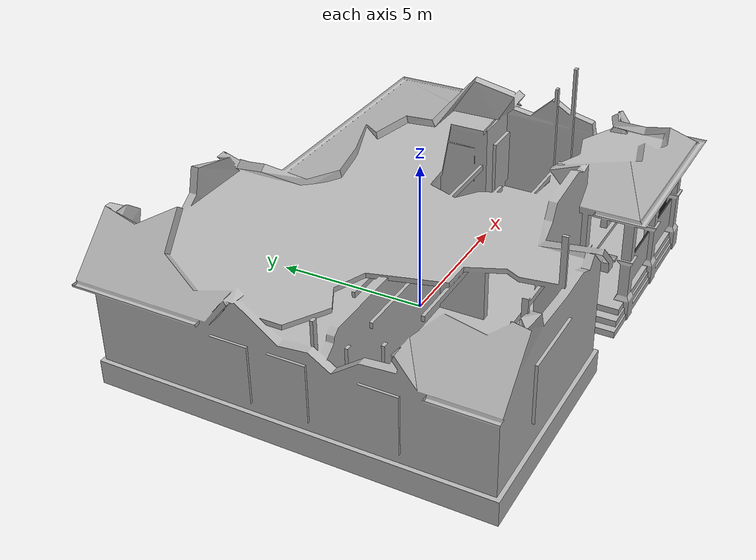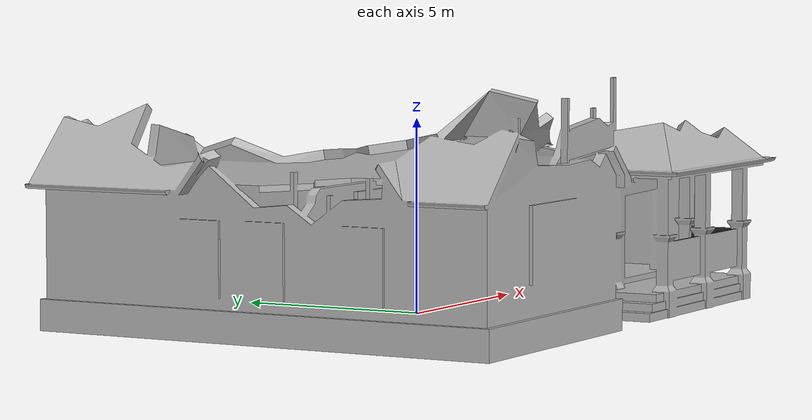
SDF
<?xml version='1.0'?>
<sdf version='1.6'>
  <model name='collapsed_house2'>
    <link name='link'>
      <self_collide>0</self_collide>
      <enable_wind>0</enable_wind>
      <kinematic>0</kinematic>
      <pose frame=''>0 0 0 0 -0 0</pose>
      <visual name='visual'>
        <geometry>
          <mesh>
            <scale>1.5 1.5 1.5</scale>
            <uri>model://collapsed_house/meshes/collapsed_house.dae</uri>
          </mesh>
        </geometry>
        <pose frame=''>0 0 0 0 -0 0</pose>
        <transparency>0</transparency>
        <cast_shadows>1</cast_shadows>
      </visual>
      <collision name='collision'>
        <laser_retro>0</laser_retro>
        <max_contacts>10</max_contacts>
        <pose frame=''>0 0 0 0 -0 0</pose>
        <geometry>
          <mesh>
            <uri>/home/marceloSimon/usar_multirobot/src/usar_gazebo/models/collapsed_house/meshes/collapsed_house.dae</uri>
            <scale>1.5 1.5 1.5</scale>
          </mesh>
        </geometry>
        <surface>
          <friction>
            <ode>
              <mu>1</mu>
              <mu2>1</mu2>
              <fdir1>0 0 0</fdir1>
              <slip1>0</slip1>
              <slip2>0</slip2>
            </ode>
            <torsional>
              <coefficient>1</coefficient>
              <patch_radius>0</patch_radius>
              <surface_radius>0</surface_radius>
              <use_patch_radius>1</use_patch_radius>
              <ode>
                <slip>0</slip>
              </ode>
            </torsional>
          </friction>
          <bounce>
            <restitution_coefficient>0</restitution_coefficient>
            <threshold>1e+06</threshold>
          </bounce>
          <contact>
            <collide_without_contact>0</collide_without_contact>
            <collide_without_contact_bitmask>1</collide_without_contact_bitmask>
            <collide_bitmask>1</collide_bitmask>
            <ode>
              <soft_cfm>0</soft_cfm>
              <soft_erp>0.2</soft_erp>
              <kp>1e+13</kp>
              <kd>1</kd>
              <max_vel>0.01</max_vel>
              <min_depth>0</min_depth>
            </ode>
            <bullet>
              <split_impulse>1</split_impulse>
              <split_impulse_penetration_threshold>-0.01</split_impulse_penetration_threshold>
              <soft_cfm>0</soft_cfm>
              <soft_erp>0.2</soft_erp>
              <kp>1e+13</kp>
              <kd>1</kd>
            </bullet>
          </contact>
        </surface>
      </collision>
    </link>
    <link name='link_0'>
      <inertial>
        <mass>0.0586522</mass>
        <inertia>
          <ixx>0.00308143</ixx>
          <ixy>0</ixy>
          <ixz>0</ixz>
          <iyy>0.012942</iyy>
          <iyz>0</iyz>
          <izz>0.00988712</izz>
        </inertia>
        <pose frame=''>0 0 0 0 -0 0</pose>
      </inertial>
      <pose frame=''>7.16592 -5.06526 1.47989 0 -0 1.57</pose>
      <self_collide>0</self_collide>
      <enable_wind>0</enable_wind>
      <kinematic>0</kinematic>
      <gravity>1</gravity>
      <visual name='visual'>
        <pose frame=''>0 0 0 0 -0 0</pose>
        <geometry>
          <box>
            <size>1.42132 0.052076 0.792297</size>
          </box>
        </geometry>
        <material>
          <lighting>1</lighting>
          <script>
            <uri>file://media/materials/scripts/gazebo.material</uri>
            <name>Gazebo/Black</name>
          </script>
          <shader type='vertex'>
            <normal_map>__default__</normal_map>
          </shader>
          <ambient>0.3 0.3 0.3 1</ambient>
          <diffuse>0.7 0.7 0.7 1</diffuse>
          <specular>0.01 0.01 0.01 1</specular>
          <emissive>0 0 0 1</emissive>
        </material>
        <transparency>0</transparency>
        <cast_shadows>1</cast_shadows>
      </visual>
      <collision name='collision'>
        <laser_retro>0</laser_retro>
        <max_contacts>10</max_contacts>
        <pose frame=''>0 0 0 0 -0 0</pose>
        <geometry>
          <box>
            <size>1.42132 0.052076 0.792297</size>
          </box>
        </geometry>
        <surface>
          <friction>
            <ode>
              <mu>1</mu>
              <mu2>1</mu2>
              <fdir1>0 0 0</fdir1>
              <slip1>0</slip1>
              <slip2>0</slip2>
            </ode>
            <torsional>
              <coefficient>1</coefficient>
              <patch_radius>0</patch_radius>
              <surface_radius>0</surface_radius>
              <use_patch_radius>1</use_patch_radius>
              <ode>
                <slip>0</slip>
              </ode>
            </torsional>
          </friction>
          <bounce>
            <restitution_coefficient>0</restitution_coefficient>
            <threshold>1e+06</threshold>
          </bounce>
          <contact>
            <collide_without_contact>0</collide_without_contact>
            <collide_without_contact_bitmask>1</collide_without_contact_bitmask>
            <collide_bitmask>1</collide_bitmask>
            <ode>
              <soft_cfm>0</soft_cfm>
              <soft_erp>0.2</soft_erp>
              <kp>1e+13</kp>
              <kd>1</kd>
              <max_vel>0.01</max_vel>
              <min_depth>0</min_depth>
            </ode>
            <bullet>
              <split_impulse>1</split_impulse>
              <split_impulse_penetration_threshold>-0.01</split_impulse_penetration_threshold>
              <soft_cfm>0</soft_cfm>
              <soft_erp>0.2</soft_erp>
              <kp>1e+13</kp>
              <kd>1</kd>
            </bullet>
          </contact>
        </surface>
      </collision>
    </link>
    <link name='link_0_clone'>
      <inertial>
        <mass>0.211219</mass>
        <inertia>
          <ixx>0.0141636</ixx>
          <ixy>0</ixy>
          <ixz>0</ixz>
          <iyy>0.375073</iyy>
          <iyz>0</iyz>
          <izz>0.361005</izz>
        </inertia>
        <pose frame=''>0 0 0 0 -0 0</pose>
      </inertial>
      <pose frame=''>4.86715 -5.76812 1.42599 0 -0 3.14</pose>
      <self_collide>0</self_collide>
      <enable_wind>0</enable_wind>
      <kinematic>0</kinematic>
      <gravity>1</gravity>
      <visual name='visual'>
        <pose frame=''>0 0 0 0 -0 0</pose>
        <geometry>
          <box>
            <size>4.52848 0.052076 0.895526</size>
          </box>
        </geometry>
        <material>
          <lighting>1</lighting>
          <script>
            <uri>file://media/materials/scripts/gazebo.material</uri>
            <name>Gazebo/Black</name>
          </script>
          <shader type='pixel'>
            <normal_map>__default__</normal_map>
          </shader>
          <ambient>0 0 0 1</ambient>
          <diffuse>0 0 0 1</diffuse>
          <specular>0.1 0.1 0.1 1</specular>
          <emissive>0 0 0 1</emissive>
        </material>
        <transparency>0</transparency>
        <cast_shadows>1</cast_shadows>
      </visual>
      <collision name='collision'>
        <laser_retro>0</laser_retro>
        <max_contacts>10</max_contacts>
        <pose frame=''>0 0 0 0 -0 0</pose>
        <geometry>
          <box>
            <size>4.52848 0.052076 0.895526</size>
          </box>
        </geometry>
        <surface>
          <friction>
            <ode>
              <mu>1</mu>
              <mu2>1</mu2>
              <fdir1>0 0 0</fdir1>
              <slip1>0</slip1>
              <slip2>0</slip2>
            </ode>
            <torsional>
              <coefficient>1</coefficient>
              <patch_radius>0</patch_radius>
              <surface_radius>0</surface_radius>
              <use_patch_radius>1</use_patch_radius>
              <ode>
                <slip>0</slip>
              </ode>
            </torsional>
          </friction>
          <bounce>
            <restitution_coefficient>0</restitution_coefficient>
            <threshold>1e+06</threshold>
          </bounce>
          <contact>
            <collide_without_contact>0</collide_without_contact>
            <collide_without_contact_bitmask>1</collide_without_contact_bitmask>
            <collide_bitmask>1</collide_bitmask>
            <ode>
              <soft_cfm>0</soft_cfm>
              <soft_erp>0.2</soft_erp>
              <kp>1e+13</kp>
              <kd>1</kd>
              <max_vel>0.01</max_vel>
              <min_depth>0</min_depth>
            </ode>
            <bullet>
              <split_impulse>1</split_impulse>
              <split_impulse_penetration_threshold>-0.01</split_impulse_penetration_threshold>
              <soft_cfm>0</soft_cfm>
              <soft_erp>0.2</soft_erp>
              <kp>1e+13</kp>
              <kd>1</kd>
            </bullet>
          </contact>
        </surface>
      </collision>
    </link>
    <link name='link_0_clone_0'>
      <inertial>
        <mass>0.0897248</mass>
        <inertia>
          <ixx>0.00496172</ixx>
          <ixy>0</ixy>
          <ixz>0</ixz>
          <iyy>0.0385165</iyy>
          <iyz>0</iyz>
          <izz>0.0335953</izz>
        </inertia>
        <pose frame=''>0 0 0 0 -0 0</pose>
      </inertial>
      <pose frame=''>5.97433 4.32289 1.47091 0 -0 3.14</pose>
      <self_collide>0</self_collide>
      <enable_wind>0</enable_wind>
      <kinematic>0</kinematic>
      <gravity>1</gravity>
      <visual name='visual'>
        <pose frame=''>0 0 0 0 -0 0</pose>
        <geometry>
          <box>
            <size>2.11906 0.052076 0.812945</size>
          </box>
        </geometry>
        <material>
          <lighting>1</lighting>
          <script>
            <uri>file://media/materials/scripts/gazebo.material</uri>
            <name>Gazebo/Black</name>
          </script>
          <shader type='pixel'>
            <normal_map>__default__</normal_map>
          </shader>
          <ambient>0.3 0.3 0.3 1</ambient>
          <diffuse>0.7 0.7 0.7 1</diffuse>
          <specular>0.01 0.01 0.01 1</specular>
          <emissive>0 0 0 1</emissive>
        </material>
        <transparency>0</transparency>
        <cast_shadows>1</cast_shadows>
      </visual>
      <collision name='collision'>
        <laser_retro>0</laser_retro>
        <max_contacts>10</max_contacts>
        <pose frame=''>0 0 0 0 -0 0</pose>
        <geometry>
          <box>
            <size>2.11906 0.052076 0.812945</size>
          </box>
        </geometry>
        <surface>
          <friction>
            <ode>
              <mu>1</mu>
              <mu2>1</mu2>
              <fdir1>0 0 0</fdir1>
              <slip1>0</slip1>
              <slip2>0</slip2>
            </ode>
            <torsional>
              <coefficient>1</coefficient>
              <patch_radius>0</patch_radius>
              <surface_radius>0</surface_radius>
              <use_patch_radius>1</use_patch_radius>
              <ode>
                <slip>0</slip>
              </ode>
            </torsional>
          </friction>
          <bounce>
            <restitution_coefficient>0</restitution_coefficient>
            <threshold>1e+06</threshold>
          </bounce>
          <contact>
            <collide_without_contact>0</collide_without_contact>
            <collide_without_contact_bitmask>1</collide_without_contact_bitmask>
            <collide_bitmask>1</collide_bitmask>
            <ode>
              <soft_cfm>0</soft_cfm>
              <soft_erp>0.2</soft_erp>
              <kp>1e+13</kp>
              <kd>1</kd>
              <max_vel>0.01</max_vel>
              <min_depth>0</min_depth>
            </ode>
            <bullet>
              <split_impulse>1</split_impulse>
              <split_impulse_penetration_threshold>-0.01</split_impulse_penetration_threshold>
              <soft_cfm>0</soft_cfm>
              <soft_erp>0.2</soft_erp>
              <kp>1e+13</kp>
              <kd>1</kd>
            </bullet>
          </contact>
        </surface>
      </collision>
    </link>
    <link name='link_0_clone_0_clone'>
      <inertial>
        <mass>0.0897248</mass>
        <inertia>
          <ixx>0.00496172</ixx>
          <ixy>0</ixy>
          <ixz>0</ixz>
          <iyy>0.0385165</iyy>
          <iyz>0</iyz>
          <izz>0.0335953</izz>
        </inertia>
        <pose frame=''>0 0 0 0 -0 0</pose>
      </inertial>
      <pose frame=''>7.16719 3.30743 1.47091 0 0 -1.57319</pose>
      <self_collide>0</self_collide>
      <enable_wind>0</enable_wind>
      <kinematic>0</kinematic>
      <gravity>1</gravity>
      <visual name='visual'>
        <pose frame=''>0 0 0 0 -0 0</pose>
        <geometry>
          <box>
            <size>2.11906 0.052076 0.812945</size>
          </box>
        </geometry>
        <material>
          <lighting>1</lighting>
          <script>
            <uri>file://media/materials/scripts/gazebo.material</uri>
            <name>Gazebo/Black</name>
          </script>
          <shader type='pixel'>
            <normal_map>__default__</normal_map>
          </shader>
          <ambient>0 0 0 1</ambient>
          <diffuse>0 0 0 1</diffuse>
          <specular>0.1 0.1 0.1 1</specular>
          <emissive>0 0 0 1</emissive>
        </material>
        <transparency>0</transparency>
        <cast_shadows>1</cast_shadows>
      </visual>
      <collision name='collision'>
        <laser_retro>0</laser_retro>
        <max_contacts>10</max_contacts>
        <pose frame=''>0 0 0 0 -0 0</pose>
        <geometry>
          <box>
            <size>2.11906 0.052076 0.812945</size>
          </box>
        </geometry>
        <surface>
          <friction>
            <ode>
              <mu>1</mu>
              <mu2>1</mu2>
              <fdir1>0 0 0</fdir1>
              <slip1>0</slip1>
              <slip2>0</slip2>
            </ode>
            <torsional>
              <coefficient>1</coefficient>
              <patch_radius>0</patch_radius>
              <surface_radius>0</surface_radius>
              <use_patch_radius>1</use_patch_radius>
              <ode>
                <slip>0</slip>
              </ode>
            </torsional>
          </friction>
          <bounce>
            <restitution_coefficient>0</restitution_coefficient>
            <threshold>1e+06</threshold>
          </bounce>
          <contact>
            <collide_without_contact>0</collide_without_contact>
            <collide_without_contact_bitmask>1</collide_without_contact_bitmask>
            <collide_bitmask>1</collide_bitmask>
            <ode>
              <soft_cfm>0</soft_cfm>
              <soft_erp>0.2</soft_erp>
              <kp>1e+13</kp>
              <kd>1</kd>
              <max_vel>0.01</max_vel>
              <min_depth>0</min_depth>
            </ode>
            <bullet>
              <split_impulse>1</split_impulse>
              <split_impulse_penetration_threshold>-0.01</split_impulse_penetration_threshold>
              <soft_cfm>0</soft_cfm>
              <soft_erp>0.2</soft_erp>
              <kp>1e+13</kp>
              <kd>1</kd>
            </bullet>
          </contact>
        </surface>
      </collision>
    </link>
    <static>1</static>
    <allow_auto_disable>1</allow_auto_disable>
  </model>
</sdf>
